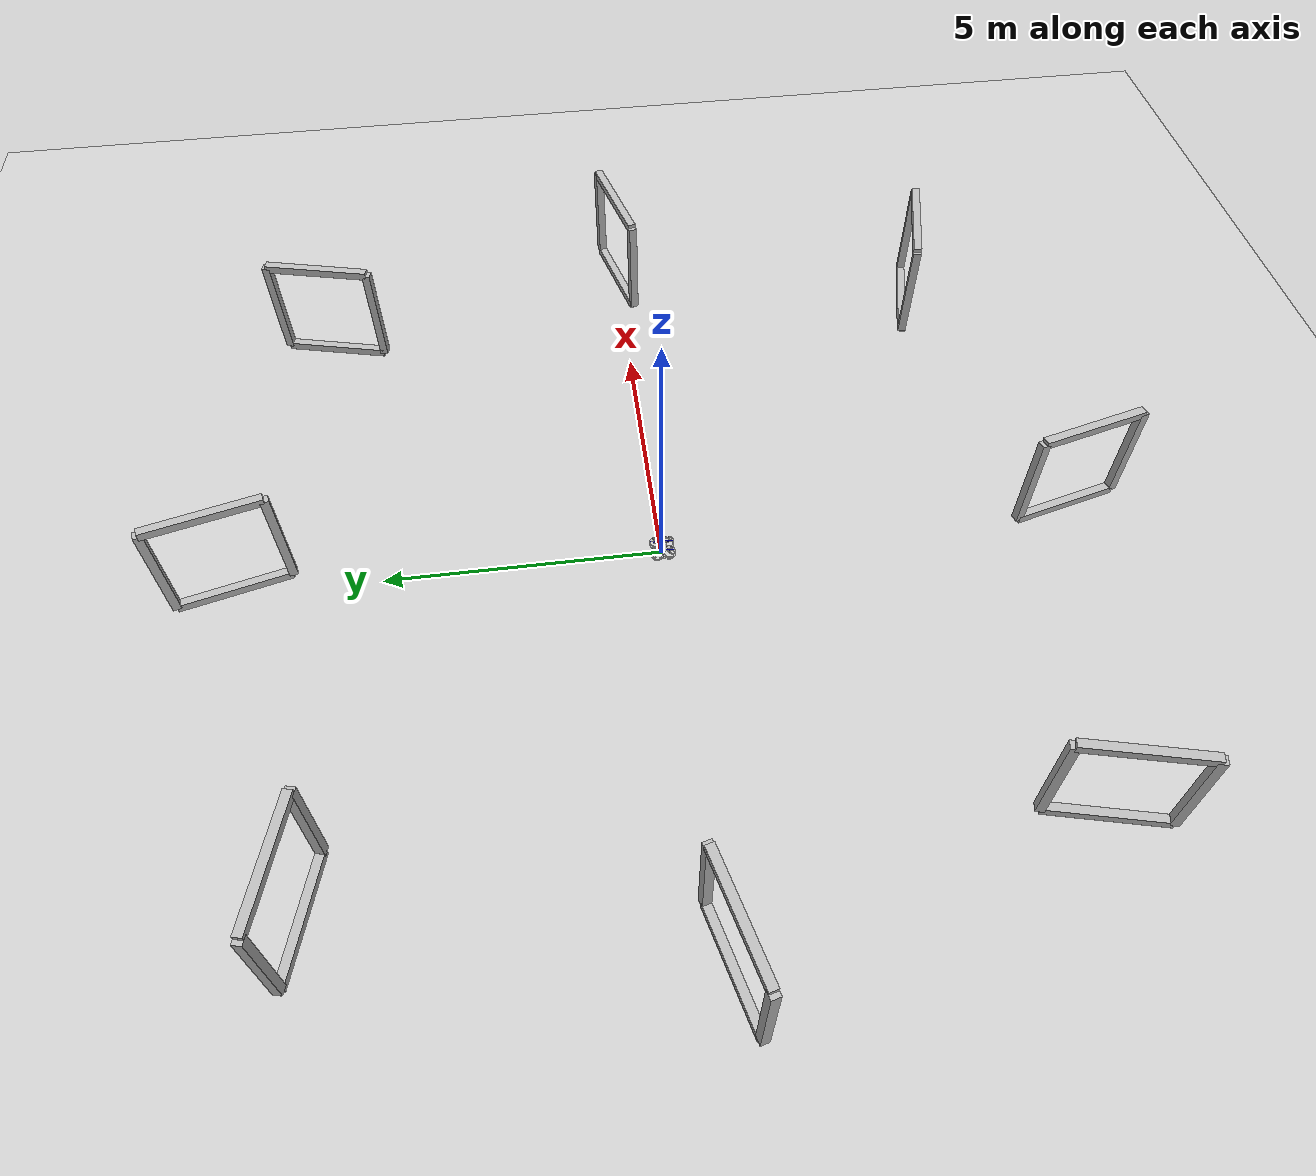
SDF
<sdf version="1.9">
  <world name="world_demo">
    <physics type="dart">
    <!--4ms step-->
      <max_step_size>0.001</max_step_size>
      <real_time_factor>1</real_time_factor>
      <real_time_update_rate>1000</real_time_update_rate>
      <dart>
        <collision_detector>bullet</collision_detector>
      </dart>
    </physics>

    <plugin name="gz::sim::systems::Physics" filename="gz-sim-physics-system">
    </plugin>
    <plugin name="gz::sim::systems::SceneBroadcaster" filename="gz-sim-scene-broadcaster-system" />
    <plugin name="gz::sim::systems::UserCommands" filename="gz-sim-user-commands-system" />
    <plugin filename="gz-sim-contact-system" name="gz::sim::systems::Contact"/>
    <model name="ground_plane">
    <pose>0 0 0 0 0 0</pose>
      <static>true</static>
      <link name="link">
        <collision name="collision">
          <geometry>
            <plane>
              <normal>0 0 1</normal>
              <size>100 100</size>
            </plane>
          </geometry>
        </collision>
        <visual name="visual">
          <geometry>
            <plane>
              <normal>0 0 1</normal>
              <size>100 100</size>
            </plane>
          </geometry>
          <material>
            <ambient>0.8 0.8 0.8 1</ambient>
            <diffuse>0.8 0.8 0.8 1</diffuse>
            <specular>0.8 0.8 0.8 1</specular>
          </material>
        </visual>
      </link>
    </model>

    <gravity>0 0 -9.82</gravity>
    <magnetic_field>6e-06 2.3e-05 -4.2e-05</magnetic_field>
    <atmosphere type="adiabatic" />
    <scene>
      <ambient>0.4 0.4 0.4 1</ambient>
      <background>0.7 0.7 0.8 1</background>
      <shadows>false</shadows>
    </scene>
    <light name="sun" type="directional">
      <pose>0 0 10 0 -0 0</pose>
      <cast_shadows>false</cast_shadows>
      <intensity>1</intensity>
      <direction>-0.5 0.1 -0.9</direction>
    </light>

     <light name="lights1" type="directional">
      <pose>0 0 3 0 -0 0</pose>
      <cast_shadows>false</cast_shadows>
      <intensity>1</intensity>
      <direction>0 0 -1</direction>
    </light>
    <light name="lights2" type="directional">
      <pose>1 0 3 0 -0 0</pose>
      <cast_shadows>false</cast_shadows>
      <intensity>1</intensity>
      <direction>0 0 -1</direction>
    </light>

    <light name="lights3" type="directional">
      <pose>-1 0 3 0 -0 0</pose>
      <cast_shadows>false</cast_shadows>
      <intensity>1</intensity>
      <direction>0 0 -1</direction>
    </light>

    <light name="lights4" type="directional">
      <pose>0 1 3 0 -0 0</pose>
      <cast_shadows>false</cast_shadows>
      <intensity>1</intensity>
      <direction>0 0 -1</direction>
    </light>

    <light name="lights5" type="directional">
      <pose>0 1 3 0 -0 0</pose>
      <cast_shadows>false</cast_shadows>
      <intensity>1</intensity>
      <direction>0 0 -1</direction>
    </light>

    <!-- Load the plugin for the wind -->

    <include>
        <uri>model://box.sdf</uri>
        <name>box1</name>
        <pose>-6.0 -6.0 1.25 0 0 -0.24497866312686414</pose>
    </include>
  <include>
        <uri>model://box.sdf</uri>
        <name>box2</name>
        <pose>0.0 -7.5 1.25 0 0 0.24497866312686414</pose>
    </include>
  <include>
        <uri>model://box.sdf</uri>
        <name>box3</name>
        <pose>6.0 -6.0 1.25 0 0 1.3258176636680326</pose>
    </include>
  <include>
        <uri>model://box.sdf</uri>
        <name>box4</name>
        <pose>7.5 0.0 1.25 0 0 1.8157749899217608</pose>
    </include>
  <include>
        <uri>model://box.sdf</uri>
        <name>box5</name>
        <pose>6.0 6.0 1.25 0 0 2.896613990462929</pose>
    </include>
  <include>
        <uri>model://box.sdf</uri>
        <name>box6</name>
        <pose>0.0 7.5 1.25 0 0 -2.896613990462929</pose>
    </include>
  <include>
        <uri>model://box.sdf</uri>
        <name>box7</name>
        <pose>-6.0 6.0 1.25 0 0 -1.8157749899217608</pose>
    </include>
  <include>
        <uri>model://box.sdf</uri>
        <name>box8</name>
        <pose>-7.5 0.0 1.25 0 0 -1.3258176636680326</pose>
    </include>
      <include>
        <uri>model://window.sdf</uri>
        <name>window1</name>
        <pose>-6.0 -6.0 1.25 0 0 -0.24497866312686414</pose>
    </include>
  <include>
        <uri>model://window.sdf</uri>
        <name>window2</name>
        <pose>0.0 -7.5 1.25 0 0 0.24497866312686414</pose>
    </include>
  <include>
        <uri>model://window.sdf</uri>
        <name>window3</name>
        <pose>6.0 -6.0 1.25 0 0 1.3258176636680326</pose>
    </include>
  <include>
        <uri>model://window.sdf</uri>
        <name>window4</name>
        <pose>7.5 0.0 1.25 0 0 1.8157749899217608</pose>
    </include>
  <include>
        <uri>model://window.sdf</uri>
        <name>window5</name>
        <pose>6.0 6.0 1.25 0 0 2.896613990462929</pose>
    </include>
  <include>
        <uri>model://window.sdf</uri>
        <name>window6</name>
        <pose>0.0 7.5 1.25 0 0 -2.896613990462929</pose>
    </include>
  <include>
        <uri>model://window.sdf</uri>
        <name>window7</name>
        <pose>-6.0 6.0 1.25 0 0 -1.8157749899217608</pose>
    </include>
  <include>
        <uri>model://window.sdf</uri>
        <name>window8</name>
        <pose>-7.5 0.0 1.25 0 0 -1.3258176636680326</pose>
    </include>

 <include>
        <uri>model://quadrotor.sdf</uri>
        <name>quadrotor</name>
        <pose>0 0. 0.15 0 0 0</pose>
    </include>
    <!-- add levels-->
    <!-- add levels-->
    <!-- create level with ground and tags-->
  <!-- a level for each window, note that window sizes are 1.5m
  So to enclose it we will use a cube of 1.5 (this will ensure enclosing at all orientations)-->

  </world>
</sdf>

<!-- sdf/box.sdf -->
<sdf version='1.11'>
  <model name="box">
  <static>true</static>
      <pose>0 0 0.5 0 0.4 0</pose>
      <link name="box_link">
        <inertial>
          <inertia>
            <ixx>0.16666</ixx>
            <ixy>0</ixy>
            <ixz>0</ixz>
            <iyy>0.16666</iyy>
            <iyz>0</iyz>
            <izz>0.16666</izz>
          </inertia>
          <mass>1.0</mass>
        </inertial>
        <collision name="box_collision">
          <geometry>
            <box>
              <size>0.1 0.1 0.1</size>
            </box>
          </geometry>
          <surface>
        <contact>
          <collide_bitmask>0x00</collide_bitmask>
        </contact>
      </surface>
        </collision>

        <visual name="box_visual">
          <geometry>
            <box>
              <size>0.0001 0.0001 0.0001</size>
            </box>
          </geometry>
          <material>
            <ambient>0 1 0 1</ambient>
            <diffuse>0 1 0 1</diffuse>
            <specular>0 1 0 1</specular>
          </material>
        </visual>
      </link>
    </model>
</sdf>

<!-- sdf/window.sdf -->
<sdf version="1.9">
<model name='window'>
      <pose>0 0 1.0 0 0 0</pose>
      <!--Link one-->
      <link name='link1'>
      <pose>0 1.0 0 0 0 0</pose>
        <inertial>
          <inertia>
            <ixx>0.16666</ixx>
            <ixy>0</ixy>
            <ixz>0</ixz>
            <iyy>0.16666</iyy>
            <iyz>0</iyz>
            <izz>0.16666</izz>
          </inertia>
          <mass>1</mass>
        </inertial>
        <collision name='box_collision'>
         <surface>
        <contact>
          <collide_bitmask>0x00</collide_bitmask>
        </contact>
      </surface>
          <geometry>
            <box>
              <size>0.05 0.05 2.0</size>
            </box>
          </geometry>
          <surface>
            <friction>
              <ode/>
            </friction>
            <bounce/>
            <contact/>
          </surface>
        </collision>
        <visual name='box_visual'>
          <geometry>
            <mesh>
              <uri>model://meshes/racing_gate.dae</uri>
              <scale>0.5 0.5 1.0</scale>
            </mesh>
          </geometry>
        </visual>
        <enable_wind>false</enable_wind>
      </link>

    <!--LInk 2-->
      <link name='link2'>
      <pose>0 0 1.0 1.57 0 0</pose>
        <inertial>
          <inertia>
            <ixx>0.16666</ixx>
            <ixy>0</ixy>
            <ixz>0</ixz>
            <iyy>0.16666</iyy>
            <iyz>0</iyz>
            <izz>0.16666</izz>
          </inertia>
          <mass>1</mass>
        </inertial>
        <collision name='box_collision'>
         <surface>
        <contact>
          <collide_bitmask>0x00</collide_bitmask>
        </contact>
      </surface>
          <geometry>
            <box>
              <size>0.05 0.05 2.0</size>
            </box>
          </geometry>
          <surface>
            <friction>
              <ode/>
            </friction>
            <bounce/>
            <contact/>
          </surface>
        </collision>
        <visual name='box_visual'>
          <geometry>
            <mesh>
              <uri>model://meshes/racing_gate.dae</uri>
              <scale>0.5 0.5 1.0</scale>
            </mesh>
          </geometry>
        </visual>
        <enable_wind>false</enable_wind>
      </link>

    <!--Link 3-->
      <link name='link3'>
      <pose>0 -1.0 0 0 0 0</pose>
        <inertial>
          <inertia>
            <ixx>0.16666</ixx>
            <ixy>0</ixy>
            <ixz>0</ixz>
            <iyy>0.16666</iyy>
            <iyz>0</iyz>
            <izz>0.16666</izz>
          </inertia>
          <mass>1</mass>
        </inertial>
        <collision name='box_collision'>
         <surface>
        <contact>
          <collide_bitmask>0x00</collide_bitmask>
        </contact>
      </surface>
          <geometry>
            <box>
              <size>0.05 0.05 2.0</size>
            </box>
          </geometry>
          <surface>
            <friction>
              <ode/>
            </friction>
            <bounce/>
            <contact/>
          </surface>
        </collision>
        <visual name='box_visual'>
          <geometry>
            <mesh>
              <uri>model://meshes/racing_gate.dae</uri>
              <scale>0.5 0.5 1.0</scale>
            </mesh>
          </geometry>
        </visual>
        <enable_wind>false</enable_wind>
      </link>

    <!--Link 4-->
      <link name='link4'>
      <pose>0 0 -1.0 1.57 0 0</pose>
        <inertial>
          <inertia>
            <ixx>0.16666</ixx>
            <ixy>0</ixy>
            <ixz>0</ixz>
            <iyy>0.16666</iyy>
            <iyz>0</iyz>
            <izz>0.16666</izz>
          </inertia>
          <mass>1</mass>
        </inertial>
        <collision name='box_collision'>
         <surface>
        <contact>
          <collide_bitmask>0x00</collide_bitmask>
        </contact>
      </surface>
          <geometry>
            <box>
              <size>0.05 0.05 2.0</size>
            </box>
          </geometry>
          <surface>
            <friction>
              <ode/>
            </friction>
            <bounce/>
            <contact/>
          </surface>
        </collision>
        <visual name='box_visual'>
          <geometry>
            <mesh>
              <uri>model://meshes/racing_gate.dae</uri>
              <scale>0.5 0.5 1.0</scale>
            </mesh>
          </geometry>
        </visual>
        <enable_wind>false</enable_wind>
      </link>

    <!--Joint 12-->
    <joint name='12joint' type='fixed'>
      <parent>link1</parent>
      <child>link2</child>
      <pose>0 0 1.0 0 0 0</pose>
    </joint>

    <!--Joint 23-->
    <joint name='23joint' type='fixed'>
      <pose>0 -1.0 0 0 0 0</pose>
      <parent>link2</parent>
      <child>link3</child>
    </joint>

    <!--Joint 34-->
    <joint name='34joint' type='fixed'>
      <pose>0 0 -1.0 0 0 0</pose>
      <parent>link3</parent>
      <child>link4</child>
    </joint>

      <static>true</static>
      <self_collide>false</self_collide>
    </model>

</sdf>

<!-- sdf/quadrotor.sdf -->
<sdf version='1.11'>
  <model name='quadrotor'>

    <enable_wind>1</enable_wind>
    <link name='quadrotor/base_link'>
      <inertial>
        <pose>0 0 0 0 0 0</pose>
        <mass>1.52</mass>
        <inertia>
          <ixx>14387108.65e-9</ixx>
          <iyy>16559882.52e-9</iyy>
          <izz>28784890.45e-9</izz>
        </inertia>
      </inertial>
      <collision name='quadrotor/base_link_inertia_collision_2'>
        <pose>0 0 0 0 0 0</pose>
        <geometry>
          <box>
            <size>0.2 0.2 0.05</size>
          </box>
        </geometry>
        <surface>
          <contact>
            <collide_without_contact>1</collide_without_contact>
          </contact>
        </surface>
      </collision>
      <visual name='quadrotor/base_link_inertia_visual_2'>
        <pose>0 0 0 3.1415920000000002 0 0</pose>
        <geometry>
          <mesh>
            <scale>1 1 1</scale>
            <uri>model://meshes/QDrone2_Combined.dae</uri>
          </mesh>
        </geometry>
      </visual>
      <sensor name='grayscale' type='camera'>
        <camera name='graycale'>
          <image>
            <width>640</width>
            <height>480</height>
            <format>L8</format>
          </image>
          <clip>
            <near>0.10000000000000001</near>
            <far>100</far>
          </clip>
          <noise>
            <type>gaussian</type>
            <mean>0</mean>
            <stddev>1e-3</stddev>
          </noise>

          <lens>
            <type>stereographic</type>
            <scale_to_hfov>1</scale_to_hfov>

              <intrinsics>

              <fx>381.47</fx>
              <fy>762.156</fy>
              <cx>297.96</cx>
              <cy>215.755</cy>

            </intrinsics>
            <projection>
              <p_fx>381.47</p_fx>
              <p_fy>762.156</p_fy>
              <p_cx>297.96</p_cx>
              <p_cy>215.755</p_cy>

            </projection>
          </lens>
        </camera>
        <always_on>false</always_on>
        <update_rate>30</update_rate>
        <visualize>false</visualize>
        <pose>0.125 0 -0.0375 3.14 1.57 3.14</pose>
      </sensor>
      <!--rgbd-->
       <sensor name='rgb' type='camera'>
        <camera name='rgb'>
          <image>
            <width>640</width>
            <height>480</height>
            <format>R8G8B8</format>
          </image>
          <clip>
            <near>0.10000000000000001</near>
            <far>100</far>
          </clip>
          <noise>
            <type>gaussian</type>
            <mean>0</mean>
            <stddev>1e-3</stddev>
          </noise>

          <lens>
            <type>stereographic</type>
            <scale_to_hfov>1</scale_to_hfov>

              <intrinsics>

              <fx>381.47</fx>
              <fy>762.156</fy> >
              <cx>297.96</cx>
              <cy>215.755</cy>

            </intrinsics>
            <projection>
              <p_fx>381.47</p_fx>
              <p_fy>762.156</p_fy>
              <p_cx>297.96</p_cx>
              <p_cy>215.755</p_cy>

            </projection>
          </lens>
        </camera>
        <always_on>false</always_on>
        <update_rate>30</update_rate>
        <visualize>false</visualize>
        <pose>0.15 0 0 0 0 0</pose>
      </sensor>
       <sensor name='depth' type='depth_camera'>
        <camera name='depth_cam'>
          <image>
            <width>640</width>
            <height>480</height>
            <format>R_FLOAT32</format>
          </image>
          <clip>
            <near>0.10000000000000001</near>
            <far>100</far>
          </clip>
          <noise>
            <type>gaussian</type>
            <mean>0</mean>
            <stddev>1e-3</stddev>
          </noise>
        </camera>
        <always_on>false</always_on>
        <update_rate>30</update_rate>
        <visualize>false</visualize>
        <pose>0.2 0 0 0 0 0</pose>
      </sensor>

      <!--IMU1 , we will use different noise params-->
      <!-- range sensor using lidar-->
      <!-- we will only use a single vertical ray-->
    </link>

    <joint name='quadrotor/rotor_0_joint' type='revolute'>
      <pose relative_to='quadrotor/base_link'>-0.1016 -0.127 0.023 0 0 0</pose>
      <parent>quadrotor/base_link</parent>
      <child>quadrotor/rotor_0</child>
      <axis>
        <xyz>0 0 1</xyz>
        <limit>
          <lower>-inf</lower>
          <upper>inf</upper>
        </limit>
        <dynamics>
          <spring_reference>0</spring_reference>
          <spring_stiffness>0</spring_stiffness>
        </dynamics>
      </axis>
    </joint>
    <link name='quadrotor/rotor_0'>
      <pose relative_to='quadrotor/rotor_0_joint'>0 0 0 0 0 0</pose>
      <inertial>
        <pose>0 0 0 0 0 0</pose>
        <mass>0.0050000000000000001</mass>
        <inertia>
          <ixx>1.9500000000000001e-07</ixx>
          <ixy>0</ixy>
          <ixz>0</ixz>
          <iyy>3.3340833333333338e-05</iyy>
          <iyz>0</iyz>
          <izz>3.3520833333333339e-05</izz>
        </inertia>
      </inertial>
      <collision name='quadrotor/rotor_0_collision'>
        <pose>0 0 0 0 0 0</pose>
        <geometry>
          <cylinder>
            <length>0.0050000000000000001</length>
            <radius>0.10000000000000001</radius>
          </cylinder>
        </geometry>
        <surface>
          <contact>
            <ode/>
          </contact>
          <friction>
            <ode/>
          </friction>
        </surface>
      </collision>
      <visual name='quadrotor/rotor_0_visual'>
        <pose>0 0 0 0 0 0</pose>
        <geometry>
          <mesh>
            <scale>1 1 1</scale>
            <uri>model://meshes/motor_prop_assembly.dae</uri>
          </mesh>
        </geometry>
        <material>
          <ambient>0 0 1 1</ambient>
          <diffuse>0 0 1 1</diffuse>
          <specular>0.1 0.1 0.1 1</specular>
          <emissive>0 0 0 0</emissive>
      </material>
      </visual>
    </link>
    <joint name='quadrotor/rotor_1_joint' type='revolute'>
      <pose relative_to='quadrotor/base_link'>0.1016 -0.127 0.023 0 0 0</pose>
      <parent>quadrotor/base_link</parent>
      <child>quadrotor/rotor_1</child>
      <axis>
        <xyz>0 0 1</xyz>
        <limit>
          <lower>-inf</lower>
          <upper>inf</upper>
        </limit>
        <dynamics>
          <spring_reference>0</spring_reference>
          <spring_stiffness>0</spring_stiffness>
        </dynamics>
      </axis>
    </joint>
    <link name='quadrotor/rotor_1'>
      <pose relative_to='quadrotor/rotor_1_joint'>0 0 0 0 0 0</pose>
      <inertial>
        <pose>0 0 0 0 0 0</pose>
        <mass>0.0050000000000000001</mass>
        <inertia>
          <ixx>1.9500000000000001e-07</ixx>
          <ixy>0</ixy>
          <ixz>0</ixz>
          <iyy>3.3340833333333338e-05</iyy>
          <iyz>0</iyz>
          <izz>3.3520833333333339e-05</izz>
        </inertia>
      </inertial>
      <collision name='quadrotor/rotor_1_collision'>
        <pose>0 0 0 0 0 0</pose>
        <geometry>
          <cylinder>
            <length>0.0050000000000000001</length>
            <radius>0.10000000000000001</radius>
          </cylinder>
        </geometry>
        <surface>
          <contact>
            <ode/>
          </contact>
          <friction>
            <ode/>
          </friction>
        </surface>
      </collision>
      <visual name='quadrotor/rotor_1_visual'>
        <pose>0 0 0 0 0 0</pose>
        <geometry>
          <mesh>
            <scale>1 1 1</scale>
            <uri>model://meshes/motor_prop_assembly.dae</uri>
          </mesh>
        </geometry>
        <material>
          <ambient>0 0 1 1</ambient>
          <diffuse>0 0 1 1</diffuse>
          <specular>0.1 0.1 0.1 1</specular>
          <emissive>0 0 0 0</emissive>
      </material>
      </visual>
    </link>
    <joint name='quadrotor/rotor_2_joint' type='revolute'>
      <pose relative_to='quadrotor/base_link'>-0.1016 0.127 0.023 0 0 0</pose>
      <parent>quadrotor/base_link</parent>
      <child>quadrotor/rotor_2</child>
      <axis>
        <xyz>0 0 1</xyz>
        <limit>
          <lower>-inf</lower>
          <upper>inf</upper>
        </limit>
        <dynamics>
          <spring_reference>0</spring_reference>
          <spring_stiffness>0</spring_stiffness>
        </dynamics>
      </axis>
    </joint>
    <link name='quadrotor/rotor_2'>
      <pose relative_to='quadrotor/rotor_2_joint'>0 0 0 0 0 0</pose>
      <inertial>
        <pose>0 0 0 0 0 0</pose>
        <mass>0.0050000000000000001</mass>
        <inertia>
          <ixx>1.9500000000000001e-07</ixx>
          <ixy>0</ixy>
          <ixz>0</ixz>
          <iyy>3.3340833333333338e-05</iyy>
          <iyz>0</iyz>
          <izz>3.3520833333333339e-05</izz>
        </inertia>
      </inertial>
      <collision name='quadrotor/rotor_2_collision'>
        <pose>0 0 0 0 0 0</pose>
        <geometry>
          <cylinder>
            <length>0.0050000000000000001</length>
            <radius>0.10000000000000001</radius>
          </cylinder>
        </geometry>
        <surface>
          <contact>
            <ode/>
          </contact>
          <friction>
            <ode/>
          </friction>
        </surface>
      </collision>
      <visual name='quadrotor/rotor_2_visual'>
        <pose>0 0 0 0 0 0</pose>
        <geometry>
          <mesh>
            <scale>1 1 1</scale>
            <uri>model://meshes/motor_prop_assembly.dae</uri>
          </mesh>
        </geometry>
        <material>
          <ambient>0 0 1 1</ambient>
          <diffuse>0 0 1 1</diffuse>
          <specular>0.1 0.1 0.1 1</specular>
          <emissive>0 0 0 0</emissive>
      </material>
      </visual>
    </link>
    <joint name='quadrotor/rotor_3_joint' type='revolute'>
      <pose relative_to='quadrotor/base_link'>0.1016 0.127 0.023 0 0 0</pose>
      <parent>quadrotor/base_link</parent>
      <child>quadrotor/rotor_3</child>
      <axis>
        <xyz>0 0 1</xyz>
        <limit>
          <lower>-inf</lower>
          <upper>inf</upper>
        </limit>
        <dynamics>
          <spring_reference>0</spring_reference>
          <spring_stiffness>0</spring_stiffness>
        </dynamics>
      </axis>
    </joint>
    <link name='quadrotor/rotor_3'>
      <pose relative_to='quadrotor/rotor_3_joint'>0 0 0 0 0 0</pose>
      <inertial>
        <pose>0 0 0 0 0 0</pose>
        <mass>0.0050000000000000001</mass>
        <inertia>
          <ixx>1.9500000000000001e-07</ixx>
          <ixy>0</ixy>
          <ixz>0</ixz>
          <iyy>3.3340833333333338e-05</iyy>
          <iyz>0</iyz>
          <izz>3.3520833333333339e-05</izz>
        </inertia>
      </inertial>
      <collision name='quadrotor/rotor_3_collision'>
        <pose>0 0 0 0 0 0</pose>
        <geometry>
          <cylinder>
            <length>0.0050000000000000001</length>
            <radius>0.10000000000000001</radius>
          </cylinder>
        </geometry>
        <surface>
          <contact>
            <ode/>
          </contact>
          <friction>
            <ode/>
          </friction>
        </surface>
      </collision>
      <visual name='quadrotor/rotor_3_visual'>
        <pose>0 0 0 0 0 0</pose>
        <geometry>
          <mesh>
            <scale>1 1 1</scale>
            <uri>model://meshes/motor_prop_assembly.dae</uri>
          </mesh>
        </geometry>
        <material>
          <ambient>0 0 1 1</ambient>
          <diffuse>0 0 1 1</diffuse>
          <specular>0.1 0.1 0.1 1</specular>
          <emissive>0 0 0 0</emissive>
      </material>
      </visual>
    </link>

    <plugin name='gz::sim::systems::MultiRotorPlugin' filename='rotor_plugin'>
      <parentLink>quadrotor/base_link</parentLink>
      <linkNames>quadrotor/rotor_0 quadrotor/rotor_1 quadrotor/rotor_2 quadrotor/rotor_3</linkNames>
      <turningDirections>1 -1 -1 1</turningDirections>
      <timeConstantUp>0.0125</timeConstantUp>
      <timeConstantDown>0.025</timeConstantDown>
      <maxRotVelocity>2246.0</maxRotVelocity>
      <thrustConstantQuadraticParams>1.9533e-6 0 0</thrustConstantQuadraticParams>

      <groundEffectConstant>1.17198e-09</groundEffectConstant>
      <momentConstantQuadraticParams>2.8400982e-08  0 0</momentConstantQuadraticParams>
      <downWashCoefficients>0.0 0.0 0.0</downWashCoefficients>
      <otherUavNames></otherUavNames>
      <rotorInertia>4.92e-6</rotorInertia>
      <rotorDragCoefficient>0.000020673</rotorDragCoefficient>
      <rollingMomentCoefficient>1e-9</rollingMomentCoefficient>
      <rotorVelocitySlowdownSim>2</rotorVelocitySlowdownSim>
    </plugin>

    <frame name='cam_joint' attached_to='quadrotor/base_link'>
      <pose>0 0 0 0 0 0</pose>
    </frame>
    <frame name='cam_link' attached_to='cam_joint'>
      <pose>0 0 0 0 0 0</pose>
    </frame>
    <frame name='imu_joint' attached_to='quadrotor/base_link'>
      <pose>0 0 0 0 0 0</pose>
    </frame>
    <frame name='imu_link' attached_to='imu_joint'>
      <pose>0 0 0 0 0 0</pose>
    </frame>
    <frame name='quadrotor/base_joint' attached_to='quadrotor/base_link'>
      <pose>0 0 0 0 0 0</pose>
    </frame>
    <frame name='quadrotor/base_link_inertia' attached_to='quadrotor/base_joint'>
      <pose>0 0 0 0 0 0</pose>
    </frame>
  </model>
</sdf>
